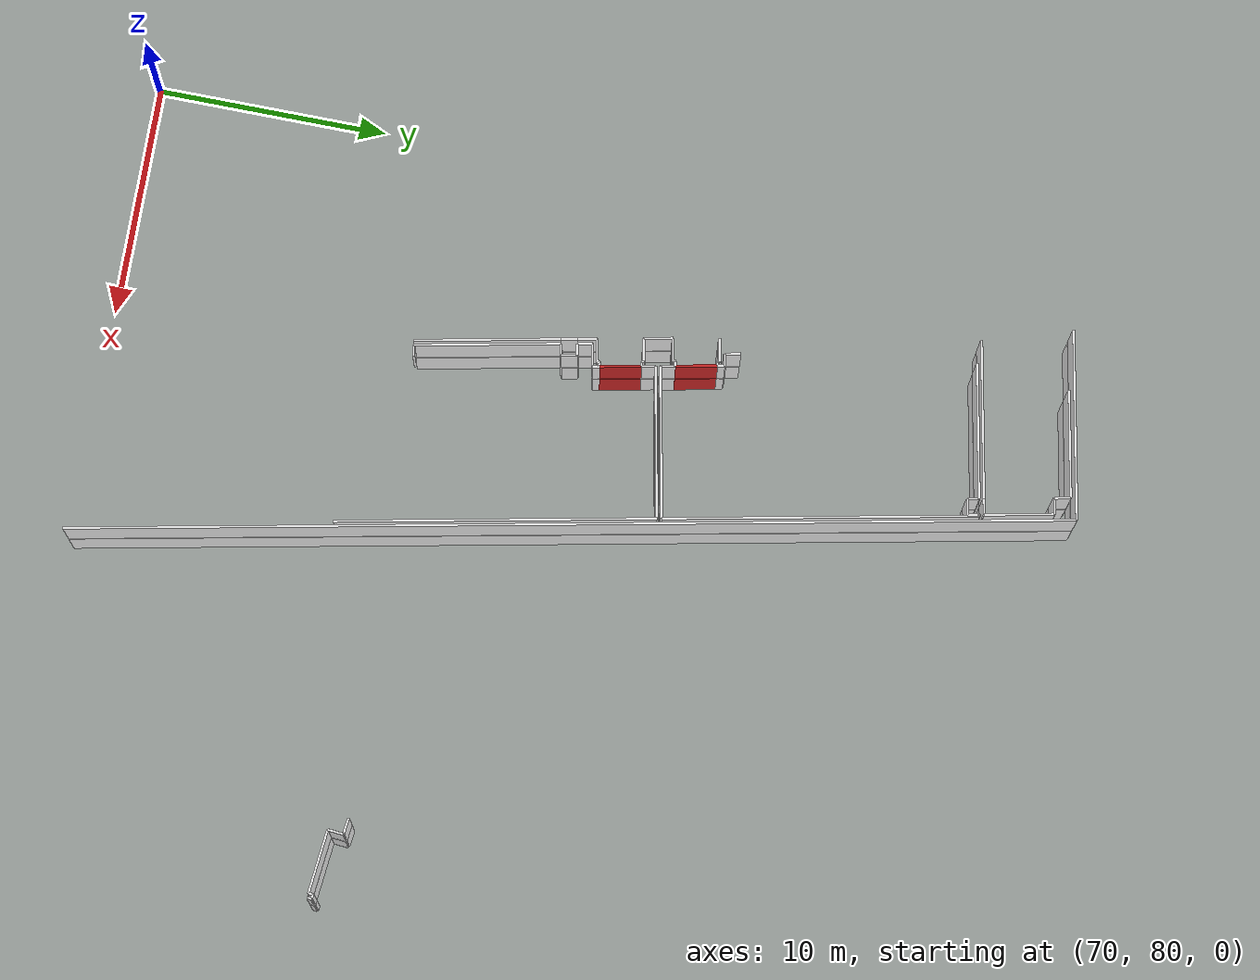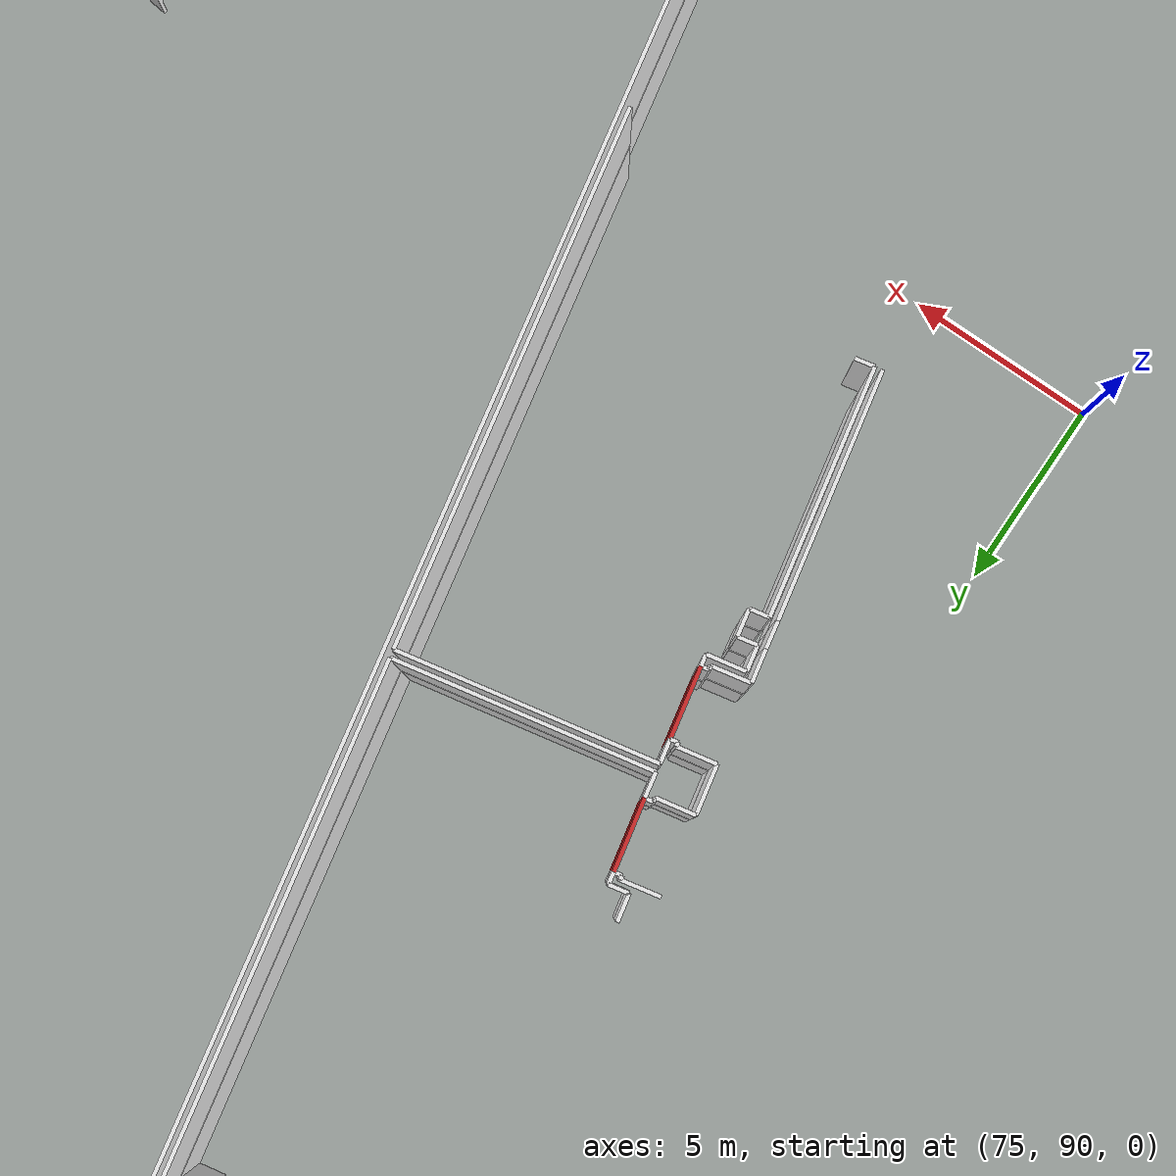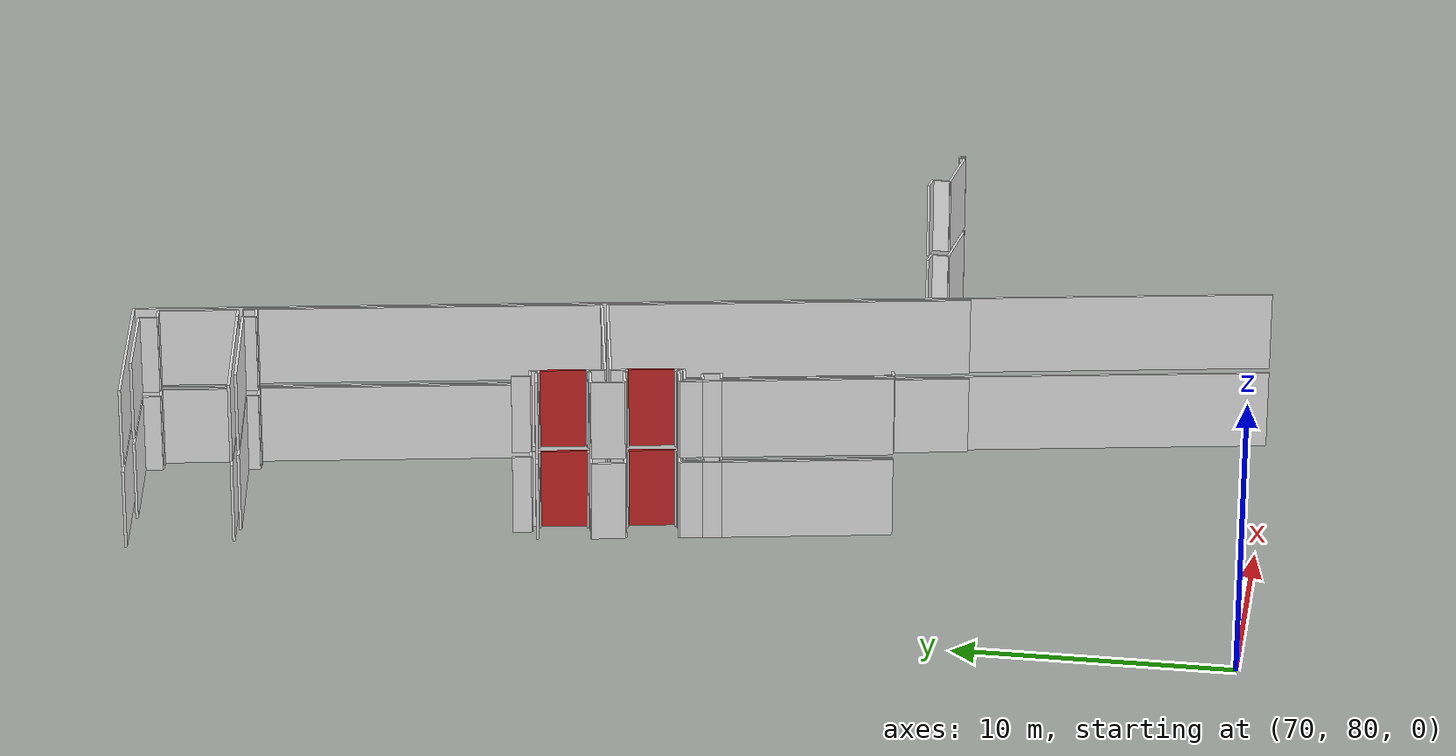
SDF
<sdf version="1.6">
 <world name="default">
  <model name="wall_78.6_105.4_0.0">
   <static>true</static>
   <pose>78.55999999999767 105.38999999989755 1.5 0 0 -1.3690339825092397</pose>
   <link name="link">
    <visual name="visual">
     <geometry><box><size>1.796440926065282 0.1 3</size></box></geometry>
     <material>
      <script><uri>file://media/materials/scripts/gazebo.material</uri><name>Gazebo/Red</name></script>
     </material>
    </visual>
   </link>
  </model>
  <model name="wall_79.2_102.2_0.0">
   <static>true</static>
   <pose>79.18499999999767 102.20999999996275 1.5 0 0 -1.3744936626731843</pose>
   <link name="link">
    <visual name="visual">
     <geometry><box><size>1.7944637079631676 0.1 3</size></box></geometry>
     <material>
      <script><uri>file://media/materials/scripts/gazebo.material</uri><name>Gazebo/Red</name></script>
     </material>
    </visual>
   </link>
  </model>
  <model name="wall_77.8_106.8_0.0">
   <static>true</static>
   <pose>77.76000000000931 106.81000000005588 1.5 0 0 -1.3677511094351602</pose>
   <link name="link">
    <visual name="visual">
     <geometry><box><size>0.6942621980193073 0.1 3</size></box></geometry>
     <material>
      <script><uri>file://media/materials/scripts/gazebo.material</uri><name>Gazebo/White</name></script>
     </material>
    </visual>
   </link>
  </model>
  <model name="wall_78.1_106.5_0.0">
   <static>true</static>
   <pose>78.0800000000163 106.52000000001863 1.5 0 0 0.19739555913347878</pose>
   <link name="link">
    <visual name="visual">
     <geometry><box><size>0.5099019512862195 0.1 3</size></box></geometry>
     <material>
      <script><uri>file://media/materials/scripts/gazebo.material</uri><name>Gazebo/White</name></script>
     </material>
    </visual>
   </link>
  </model>
  <model name="wall_78.4_106.4_0.0">
   <static>true</static>
   <pose>78.35500000001048 106.4199999999255 1.5 0 0 -1.4056476493173427</pose>
   <link name="link">
    <visual name="visual">
     <geometry><box><size>0.30413812632926696 0.1 3</size></box></geometry>
     <material>
      <script><uri>file://media/materials/scripts/gazebo.material</uri><name>Gazebo/White</name></script>
     </material>
    </visual>
   </link>
  </model>
  <model name="wall_78.8_104.2_0.0">
   <static>true</static>
   <pose>78.79999999998836 104.19499999983236 1.5 0 0 -1.382574821464652</pose>
   <link name="link">
    <visual name="visual">
     <geometry><box><size>0.6413267496823023 0.1 3</size></box></geometry>
     <material>
      <script><uri>file://media/materials/scripts/gazebo.material</uri><name>Gazebo/White</name></script>
     </material>
    </visual>
   </link>
  </model>
  <model name="wall_82.1_104.5_0.0">
   <static>true</static>
   <pose>82.07499999998254 104.51499999989755 1.5 0 0 0.1950017882431763</pose>
   <link name="link">
    <visual name="visual">
     <geometry><box><size>6.554220014613294 0.1 3</size></box></geometry>
     <material>
      <script><uri>file://media/materials/scripts/gazebo.material</uri><name>Gazebo/White</name></script>
     </material>
    </visual>
   </link>
  </model>
  <model name="wall_84.0_111.8_0.0">
   <static>true</static>
   <pose>83.97000000000116 111.76499999989755 1.5 0 0 1.7677557767697853</pose>
   <link name="link">
    <visual name="visual">
     <geometry><box><size>13.490830219051515 0.1 3</size></box></geometry>
     <material>
      <script><uri>file://media/materials/scripts/gazebo.material</uri><name>Gazebo/White</name></script>
     </material>
    </visual>
   </link>
  </model>
  <model name="wall_82.6_118.4_0.0">
   <static>true</static>
   <pose>82.625 118.375 1.5 0 0 -2.944197098217425</pose>
   <link name="link">
    <visual name="visual">
     <geometry><box><size>0.050990195137754324 0.1 3</size></box></geometry>
     <material>
      <script><uri>file://media/materials/scripts/gazebo.material</uri><name>Gazebo/White</name></script>
     </material>
    </visual>
   </link>
  </model>
  <model name="wall_82.6_118.1_0.0">
   <static>true</static>
   <pose>82.64999999999418 118.13000000012107 1.5 0 0 -1.3654009375276481</pose>
   <link name="link">
    <visual name="visual">
     <geometry><box><size>0.4903060268741386 0.1 3</size></box></geometry>
     <material>
      <script><uri>file://media/materials/scripts/gazebo.material</uri><name>Gazebo/White</name></script>
     </material>
    </visual>
   </link>
  </model>
  <model name="wall_82.4_117.8_0.0">
   <static>true</static>
   <pose>82.35500000001048 117.82499999995343 1.5 0 0 -2.9553698126839456</pose>
   <link name="link">
    <visual name="visual">
     <geometry><box><size>0.7021395873294909 0.1 3</size></box></geometry>
     <material>
      <script><uri>file://media/materials/scripts/gazebo.material</uri><name>Gazebo/White</name></script>
     </material>
    </visual>
   </link>
  </model>
  <model name="wall_82.0_118.0_0.0">
   <static>true</static>
   <pose>81.95999999999185 118.0 1.5 0 0 1.7761917158684424</pose>
   <link name="link">
    <visual name="visual">
     <geometry><box><size>0.4903060273300119 0.1 3</size></box></geometry>
     <material>
      <script><uri>file://media/materials/scripts/gazebo.material</uri><name>Gazebo/White</name></script>
     </material>
    </visual>
   </link>
  </model>
  <model name="wall_79.1_117.7_0.0">
   <static>true</static>
   <pose>79.06499999997322 117.68000000016764 1.5 0 0 -2.947240709618677</pose>
   <link name="link">
    <visual name="visual">
     <geometry><box><size>5.799180976679107 0.1 3</size></box></geometry>
     <material>
      <script><uri>file://media/materials/scripts/gazebo.material</uri><name>Gazebo/White</name></script>
     </material>
    </visual>
   </link>
  </model>
  <model name="wall_79.4_101.2_0.0">
   <static>true</static>
   <pose>79.38999999998487 101.18500000005588 1.5 0 0 -1.3667783472355337</pose>
   <link name="link">
    <visual name="visual">
     <geometry><box><size>0.2961418579352255 0.1 3</size></box></geometry>
     <material>
      <script><uri>file://media/materials/scripts/gazebo.material</uri><name>Gazebo/White</name></script>
     </material>
    </visual>
   </link>
  </model>
  <model name="wall_78.9_100.9_0.0">
   <static>true</static>
   <pose>78.92999999999302 100.94500000006519 1.5 0 0 -2.950090935171577</pose>
   <link name="link">
    <visual name="visual">
     <geometry><box><size>0.9982484660355146 0.1 3</size></box></geometry>
     <material>
      <script><uri>file://media/materials/scripts/gazebo.material</uri><name>Gazebo/White</name></script>
     </material>
    </visual>
   </link>
  </model>
  <model name="wall_78.5_100.5_0.0">
   <static>true</static>
   <pose>78.50500000000466 100.53000000002794 1.5 0 0 -1.3703977730017727</pose>
   <link name="link">
    <visual name="visual">
     <geometry><box><size>0.6530696748189306 0.1 3</size></box></geometry>
     <material>
      <script><uri>file://media/materials/scripts/gazebo.material</uri><name>Gazebo/White</name></script>
     </material>
    </visual>
   </link>
  </model>
  <model name="wall_78.8_100.3_0.0">
   <static>true</static>
   <pose>78.81500000000233 100.26000000000931 1.5 0 0 0.2013171085608308</pose>
   <link name="link">
    <visual name="visual">
     <geometry><box><size>0.5000999900114971 0.1 3</size></box></geometry>
     <material>
      <script><uri>file://media/materials/scripts/gazebo.material</uri><name>Gazebo/White</name></script>
     </material>
    </visual>
   </link>
  </model>
  <model name="wall_79.1_100.0_0.0">
   <static>true</static>
   <pose>79.125 99.96999999997206 1.5 0 0 -1.3818991459561358</pose>
   <link name="link">
    <visual name="visual">
     <geometry><box><size>0.6923149573923696 0.1 3</size></box></geometry>
     <material>
      <script><uri>file://media/materials/scripts/gazebo.material</uri><name>Gazebo/White</name></script>
     </material>
    </visual>
   </link>
  </model>
  <model name="wall_78.9_99.6_0.0">
   <static>true</static>
   <pose>78.94500000000698 99.57999999984168 1.5 0 0 -2.9402755450289626</pose>
   <link name="link">
    <visual name="visual">
     <geometry><box><size>0.5000999900114971 0.1 3</size></box></geometry>
     <material>
      <script><uri>file://media/materials/scripts/gazebo.material</uri><name>Gazebo/White</name></script>
     </material>
    </visual>
   </link>
  </model>
  <model name="wall_79.3_96.4_0.0">
   <static>true</static>
   <pose>79.31500000000233 96.44999999995343 1.5 0 0 -1.37371297423356</pose>
   <link name="link">
    <visual name="visual">
     <geometry><box><size>6.281600114306311 0.1 3</size></box></geometry>
     <material>
      <script><uri>file://media/materials/scripts/gazebo.material</uri><name>Gazebo/White</name></script>
     </material>
    </visual>
   </link>
  </model>
  <model name="wall_86.7_98.2_0.0">
   <static>true</static>
   <pose>86.67500000001746 98.21000000019558 1.5 0 0 1.7677638655556385</pose>
   <link name="link">
    <visual name="visual">
     <geometry><box><size>13.745781170945156 0.1 3</size></box></geometry>
     <material>
      <script><uri>file://media/materials/scripts/gazebo.material</uri><name>Gazebo/White</name></script>
     </material>
    </visual>
   </link>
  </model>
  <model name="wall_82.1_104.3_0.0">
   <static>true</static>
   <pose>82.11000000001513 104.31500000017695 1.5 0 0 -2.9468860624579416</pose>
   <link name="link">
    <visual name="visual">
     <geometry><box><size>6.564030773852092 0.1 3</size></box></geometry>
     <material>
      <script><uri>file://media/materials/scripts/gazebo.material</uri><name>Gazebo/White</name></script>
     </material>
    </visual>
   </link>
  </model>
  <model name="wall_79.0_103.4_0.0">
   <static>true</static>
   <pose>78.95000000001164 103.38500000000931 1.5 0 0 -1.370143449587411</pose>
   <link name="link">
    <visual name="visual">
     <geometry><box><size>0.6020797292489833 0.1 3</size></box></geometry>
     <material>
      <script><uri>file://media/materials/scripts/gazebo.material</uri><name>Gazebo/White</name></script>
     </material>
    </visual>
   </link>
  </model>
  <model name="wall_78.9_121.6_0.0">
   <static>true</static>
   <pose>78.89000000001397 121.61499999999069 1.5 0 0 0.19441557721220537</pose>
   <link name="link">
    <visual name="visual">
     <geometry><box><size>4.606788469248449 0.1 3</size></box></geometry>
     <material>
      <script><uri>file://media/materials/scripts/gazebo.material</uri><name>Gazebo/White</name></script>
     </material>
    </visual>
   </link>
  </model>
  <model name="wall_81.2_121.7_0.0">
   <static>true</static>
   <pose>81.22000000000116 121.71999999997206 1.5 0 0 -1.3677511096525332</pose>
   <link name="link">
    <visual name="visual">
     <geometry><box><size>0.6942621984636649 0.1 3</size></box></geometry>
     <material>
      <script><uri>file://media/materials/scripts/gazebo.material</uri><name>Gazebo/White</name></script>
     </material>
    </visual>
   </link>
  </model>
  <model name="wall_81.6_121.4_0.0">
   <static>true</static>
   <pose>81.62999999997555 121.44499999983236 1.5 0 0 0.18889718072096112</pose>
   <link name="link">
    <visual name="visual">
     <geometry><box><size>0.6923149571989928 0.1 3</size></box></geometry>
     <material>
      <script><uri>file://media/materials/scripts/gazebo.material</uri><name>Gazebo/White</name></script>
     </material>
    </visual>
   </link>
  </model>
  <model name="wall_82.3_120.0_0.0">
   <static>true</static>
   <pose>82.26499999998487 120.0449999999255 1.5 0 0 -1.3720884317123052</pose>
   <link name="link">
    <visual name="visual">
     <geometry><box><size>2.9888124729202743 0.1 3</size></box></geometry>
     <material>
      <script><uri>file://media/materials/scripts/gazebo.material</uri><name>Gazebo/White</name></script>
     </material>
    </visual>
   </link>
  </model>
  <model name="wall_82.2_118.5_0.0">
   <static>true</static>
   <pose>82.21499999999651 118.51000000000931 1.5 0 0 -2.9414115854430696</pose>
   <link name="link">
    <visual name="visual">
     <geometry><box><size>0.7040596565914858 0.1 3</size></box></geometry>
     <material>
      <script><uri>file://media/materials/scripts/gazebo.material</uri><name>Gazebo/White</name></script>
     </material>
    </visual>
   </link>
  </model>
  <model name="wall_78.5_117.8_0.0">
   <static>true</static>
   <pose>78.52999999999884 117.78000000002794 1.5 0 0 -2.9465012371516703</pose>
   <link name="link">
    <visual name="visual">
     <geometry><box><size>6.809170287154237 0.1 3</size></box></geometry>
     <material>
      <script><uri>file://media/materials/scripts/gazebo.material</uri><name>Gazebo/White</name></script>
     </material>
    </visual>
   </link>
  </model>
  <model name="wall_77.7_106.2_0.0">
   <static>true</static>
   <pose>77.67999999999302 106.22999999998137 1.5 0 0 0.2013171085608308</pose>
   <link name="link">
    <visual name="visual">
     <geometry><box><size>1.0001999800229942 0.1 3</size></box></geometry>
     <material>
      <script><uri>file://media/materials/scripts/gazebo.material</uri><name>Gazebo/White</name></script>
     </material>
    </visual>
   </link>
  </model>
  <model name="wall_78.2_106.3_0.0">
   <static>true</static>
   <pose>78.17499999998836 106.28000000002794 1.5 0 0 -1.4711276743037347</pose>
   <link name="link">
    <visual name="visual">
     <geometry><box><size>0.10049875630480566 0.1 3</size></box></geometry>
     <material>
      <script><uri>file://media/materials/scripts/gazebo.material</uri><name>Gazebo/White</name></script>
     </material>
    </visual>
   </link>
  </model>
  <model name="wall_78.3_106.2_0.0">
   <static>true</static>
   <pose>78.27999999999884 106.25 1.5 0 0 0.19739556001778746</pose>
   <link name="link">
    <visual name="visual">
     <geometry><box><size>0.20396078056243275 0.1 3</size></box></geometry>
     <material>
      <script><uri>file://media/materials/scripts/gazebo.material</uri><name>Gazebo/White</name></script>
     </material>
    </visual>
   </link>
  </model>
  <model name="wall_78.6_104.5_0.0">
   <static>true</static>
   <pose>78.63500000000931 104.48999999999069 1.5 0 0 -2.9533711502210322</pose>
   <link name="link">
    <visual name="visual">
     <geometry><box><size>0.21377558314756415 0.1 3</size></box></geometry>
     <material>
      <script><uri>file://media/materials/scripts/gazebo.material</uri><name>Gazebo/White</name></script>
     </material>
    </visual>
   </link>
  </model>
  <model name="wall_78.5_104.4_0.0">
   <static>true</static>
   <pose>78.54000000000815 104.42000000015832 1.5 0 0 -1.3734007675047049</pose>
   <link name="link">
    <visual name="visual">
     <geometry><box><size>0.10198039035541688 0.1 3</size></box></geometry>
     <material>
      <script><uri>file://media/materials/scripts/gazebo.material</uri><name>Gazebo/White</name></script>
     </material>
    </visual>
   </link>
  </model>
  <model name="wall_78.1_104.3_0.0">
   <static>true</static>
   <pose>78.05999999999767 104.2750000001397 1.5 0 0 -2.950090935171577</pose>
   <link name="link">
    <visual name="visual">
     <geometry><box><size>0.9982484660355146 0.1 3</size></box></geometry>
     <material>
      <script><uri>file://media/materials/scripts/gazebo.material</uri><name>Gazebo/White</name></script>
     </material>
    </visual>
   </link>
  </model>
  <model name="wall_77.7_103.6_0.0">
   <static>true</static>
   <pose>77.69500000000698 103.57000000006519 1.5 0 0 -1.3686763926784307</pose>
   <link name="link">
    <visual name="visual">
     <geometry><box><size>1.2453513562444674 0.1 3</size></box></geometry>
     <material>
      <script><uri>file://media/materials/scripts/gazebo.material</uri><name>Gazebo/White</name></script>
     </material>
    </visual>
   </link>
  </model>
  <model name="wall_78.3_103.1_0.0">
   <static>true</static>
   <pose>78.30999999999767 103.05499999993481 1.5 0 0 0.19150171841821614</pose>
   <link name="link">
    <visual name="visual">
     <geometry><box><size>0.9982484660355146 0.1 3</size></box></geometry>
     <material>
      <script><uri>file://media/materials/scripts/gazebo.material</uri><name>Gazebo/White</name></script>
     </material>
    </visual>
   </link>
  </model>
  <model name="wall_78.8_103.1_0.0">
   <static>true</static>
   <pose>78.80999999999767 103.0999999998603 1.5 0 0 -1.373400766945016</pose>
   <link name="link">
    <visual name="visual">
     <geometry><box><size>0.10198039036683233 0.1 3</size></box></geometry>
     <material>
      <script><uri>file://media/materials/scripts/gazebo.material</uri><name>Gazebo/White</name></script>
     </material>
    </visual>
   </link>
  </model>
  <model name="wall_78.9_103.1_0.0">
   <static>true</static>
   <pose>78.91500000000815 103.06999999983236 1.5 0 0 0.20749622662047904</pose>
   <link name="link">
    <visual name="visual">
     <geometry><box><size>0.19416487839942884 0.1 3</size></box></geometry>
     <material>
      <script><uri>file://media/materials/scripts/gazebo.material</uri><name>Gazebo/White</name></script>
     </material>
    </visual>
   </link>
  </model>
  <model name="wall_79.3_101.3_0.0">
   <static>true</static>
   <pose>79.26499999998487 101.31000000005588 1.5 0 0 -2.9340964269693144</pose>
   <link name="link">
    <visual name="visual">
     <geometry><box><size>0.19416487839942884 0.1 3</size></box></geometry>
     <material>
      <script><uri>file://media/materials/scripts/gazebo.material</uri><name>Gazebo/White</name></script>
     </material>
    </visual>
   </link>
  </model>
  <model name="wall_79.2_101.2_0.0">
   <static>true</static>
   <pose>79.17999999999302 101.24500000011176 1.5 0 0 -1.3521273803731177</pose>
   <link name="link">
    <visual name="visual">
     <geometry><box><size>0.0921954444315063 0.1 3</size></box></geometry>
     <material>
      <script><uri>file://media/materials/scripts/gazebo.material</uri><name>Gazebo/White</name></script>
     </material>
    </visual>
   </link>
  </model>
  <model name="wall_78.7_101.1_0.0">
   <static>true</static>
   <pose>78.69500000000698 101.10000000009313 1.5 0 0 -2.942255348424875</pose>
   <link name="link">
    <visual name="visual">
     <geometry><box><size>1.0100000000277551 0.1 3</size></box></geometry>
     <material>
      <script><uri>file://media/materials/scripts/gazebo.material</uri><name>Gazebo/White</name></script>
     </material>
    </visual>
   </link>
  </model>
  <model name="wall_78.3_100.6_0.0">
   <static>true</static>
   <pose>78.28500000000349 100.58499999996275 1.5 0 0 -1.3687711704277956</pose>
   <link name="link">
    <visual name="visual">
     <geometry><box><size>0.8472307832687256 0.1 3</size></box></geometry>
     <material>
      <script><uri>file://media/materials/scripts/gazebo.material</uri><name>Gazebo/White</name></script>
     </material>
    </visual>
   </link>
  </model>
  <model name="wall_78.4_99.8_0.0">
   <static>true</static>
   <pose>78.43499999999767 99.8300000000745 1.5 0 0 -1.3818991458298349</pose>
   <link name="link">
    <visual name="visual">
     <geometry><box><size>0.6923149569349915 0.1 3</size></box></geometry>
     <material>
      <script><uri>file://media/materials/scripts/gazebo.material</uri><name>Gazebo/White</name></script>
     </material>
    </visual>
   </link>
  </model>
  <model name="wall_79.1_96.4_0.0">
   <static>true</static>
   <pose>79.11999999999534 96.41000000014901 1.5 0 0 -1.3721523281490677</pose>
   <link name="link">
    <visual name="visual">
     <geometry><box><size>6.283565866752152 0.1 3</size></box></geometry>
     <material>
      <script><uri>file://media/materials/scripts/gazebo.material</uri><name>Gazebo/White</name></script>
     </material>
    </visual>
   </link>
  </model>
  <model name="wall_103.9_93.6_0.0">
   <static>true</static>
   <pose>103.94500000000698 93.5800000000745 1.5 0 0 1.4219063791853994</pose>
   <link name="link">
    <visual name="visual">
     <geometry><box><size>0.20223748434991518 0.1 3</size></box></geometry>
     <material>
      <script><uri>file://media/materials/scripts/gazebo.material</uri><name>Gazebo/White</name></script>
     </material>
    </visual>
   </link>
  </model>
  <model name="wall_103.9_93.7_0.0">
   <static>true</static>
   <pose>103.86000000001513 93.69000000017695 1.5 0 0 3.0419240010121844</pose>
   <link name="link">
    <visual name="visual">
     <geometry><box><size>0.20099751243585498 0.1 3</size></box></geometry>
     <material>
      <script><uri>file://media/materials/scripts/gazebo.material</uri><name>Gazebo/White</name></script>
     </material>
    </visual>
   </link>
  </model>
  <model name="wall_103.8_93.6_0.0">
   <static>true</static>
   <pose>103.75 93.60000000009313 1.5 0 0 -1.6704649792860586</pose>
   <link name="link">
    <visual name="visual">
     <geometry><box><size>0.20099751260961132 0.1 3</size></box></geometry>
     <material>
      <script><uri>file://media/materials/scripts/gazebo.material</uri><name>Gazebo/White</name></script>
     </material>
    </visual>
   </link>
  </model>
  <model name="wall_102.3_93.6_0.0">
   <static>true</static>
   <pose>102.34500000000116 93.63999999989755 1.5 0 0 3.041569139581511</pose>
   <link name="link">
    <visual name="visual">
     <geometry><box><size>2.804014978520681 0.1 3</size></box></geometry>
     <material>
      <script><uri>file://media/materials/scripts/gazebo.material</uri><name>Gazebo/White</name></script>
     </material>
    </visual>
   </link>
  </model>
  <model name="wall_101.0_94.1_0.0">
   <static>true</static>
   <pose>100.98500000001513 94.125 1.5 0 0 1.4696929551082138</pose>
   <link name="link">
    <visual name="visual">
     <geometry><box><size>0.6935416357843824 0.1 3</size></box></geometry>
     <material>
      <script><uri>file://media/materials/scripts/gazebo.material</uri><name>Gazebo/White</name></script>
     </material>
    </visual>
   </link>
  </model>
  <model name="wall_100.7_94.5_0.0">
   <static>true</static>
   <pose>100.6700000000128 94.51000000000931 1.5 0 0 3.0278006469995504</pose>
   <link name="link">
    <visual name="visual">
     <geometry><box><size>0.7045565981194933 0.1 3</size></box></geometry>
     <material>
      <script><uri>file://media/materials/scripts/gazebo.material</uri><name>Gazebo/White</name></script>
     </material>
    </visual>
   </link>
  </model>
  <model name="wall_86.2_101.4_0.0">
   <static>true</static>
   <pose>86.25 101.36499999999069 1.5 0 0 1.767599820403571</pose>
   <link name="link">
    <visual name="visual">
     <geometry><box><size>43.061227339674524 0.1 3</size></box></geometry>
     <material>
      <script><uri>file://media/materials/scripts/gazebo.material</uri><name>Gazebo/White</name></script>
     </material>
    </visual>
   </link>
  </model>
  <model name="wall_78.0_121.7_0.0">
   <static>true</static>
   <pose>78.03500000000349 121.68999999994412 1.5 0 0 -2.9468394128265745</pose>
   <link name="link">
    <visual name="visual">
     <geometry><box><size>8.164343206863132 0.1 3</size></box></geometry>
     <material>
      <script><uri>file://media/materials/scripts/gazebo.material</uri><name>Gazebo/White</name></script>
     </material>
    </visual>
   </link>
  </model>
  <model name="wall_78.6_105.4_3.2">
   <static>true</static>
   <pose>78.55999999999767 105.38999999989755 4.7 0 0 -1.3690339825092397</pose>
   <link name="link">
    <visual name="visual">
     <geometry><box><size>1.796440926065282 0.1 3</size></box></geometry>
     <material>
      <script><uri>file://media/materials/scripts/gazebo.material</uri><name>Gazebo/Red</name></script>
     </material>
    </visual>
   </link>
  </model>
  <model name="wall_79.2_102.2_3.2">
   <static>true</static>
   <pose>79.18499999999767 102.20999999996275 4.7 0 0 -1.3744936626731843</pose>
   <link name="link">
    <visual name="visual">
     <geometry><box><size>1.7944637079631676 0.1 3</size></box></geometry>
     <material>
      <script><uri>file://media/materials/scripts/gazebo.material</uri><name>Gazebo/Red</name></script>
     </material>
    </visual>
   </link>
  </model>
  <model name="wall_77.8_106.8_3.2">
   <static>true</static>
   <pose>77.76000000000931 106.81000000005588 4.7 0 0 -1.3677511094351602</pose>
   <link name="link">
    <visual name="visual">
     <geometry><box><size>0.6942621980193073 0.1 3</size></box></geometry>
     <material>
      <script><uri>file://media/materials/scripts/gazebo.material</uri><name>Gazebo/White</name></script>
     </material>
    </visual>
   </link>
  </model>
  <model name="wall_78.1_106.5_3.2">
   <static>true</static>
   <pose>78.0800000000163 106.52000000001863 4.7 0 0 0.19739555913347878</pose>
   <link name="link">
    <visual name="visual">
     <geometry><box><size>0.5099019512862195 0.1 3</size></box></geometry>
     <material>
      <script><uri>file://media/materials/scripts/gazebo.material</uri><name>Gazebo/White</name></script>
     </material>
    </visual>
   </link>
  </model>
  <model name="wall_78.4_106.4_3.2">
   <static>true</static>
   <pose>78.35500000001048 106.4199999999255 4.7 0 0 -1.4056476493173427</pose>
   <link name="link">
    <visual name="visual">
     <geometry><box><size>0.30413812632926696 0.1 3</size></box></geometry>
     <material>
      <script><uri>file://media/materials/scripts/gazebo.material</uri><name>Gazebo/White</name></script>
     </material>
    </visual>
   </link>
  </model>
  <model name="wall_78.8_104.2_3.2">
   <static>true</static>
   <pose>78.79999999998836 104.19499999983236 4.7 0 0 -1.382574821464652</pose>
   <link name="link">
    <visual name="visual">
     <geometry><box><size>0.6413267496823023 0.1 3</size></box></geometry>
     <material>
      <script><uri>file://media/materials/scripts/gazebo.material</uri><name>Gazebo/White</name></script>
     </material>
    </visual>
   </link>
  </model>
  <model name="wall_82.1_104.5_3.2">
   <static>true</static>
   <pose>82.07499999998254 104.51499999989755 4.7 0 0 0.1950017882431763</pose>
   <link name="link">
    <visual name="visual">
     <geometry><box><size>6.554220014613294 0.1 3</size></box></geometry>
     <material>
      <script><uri>file://media/materials/scripts/gazebo.material</uri><name>Gazebo/White</name></script>
     </material>
    </visual>
   </link>
  </model>
  <model name="wall_84.0_111.8_3.2">
   <static>true</static>
   <pose>83.97000000000116 111.76499999989755 4.7 0 0 1.7677557767697853</pose>
   <link name="link">
    <visual name="visual">
     <geometry><box><size>13.490830219051515 0.1 3</size></box></geometry>
     <material>
      <script><uri>file://media/materials/scripts/gazebo.material</uri><name>Gazebo/White</name></script>
     </material>
    </visual>
   </link>
  </model>
  <model name="wall_82.6_118.4_3.2">
   <static>true</static>
   <pose>82.625 118.375 4.7 0 0 -2.944197098217425</pose>
   <link name="link">
    <visual name="visual">
     <geometry><box><size>0.050990195137754324 0.1 3</size></box></geometry>
     <material>
      <script><uri>file://media/materials/scripts/gazebo.material</uri><name>Gazebo/White</name></script>
     </material>
    </visual>
   </link>
  </model>
  <model name="wall_82.6_118.1_3.2">
   <static>true</static>
   <pose>82.64999999999418 118.13000000012107 4.7 0 0 -1.3654009375276481</pose>
   <link name="link">
    <visual name="visual">
     <geometry><box><size>0.4903060268741386 0.1 3</size></box></geometry>
     <material>
      <script><uri>file://media/materials/scripts/gazebo.material</uri><name>Gazebo/White</name></script>
     </material>
    </visual>
   </link>
  </model>
  <model name="wall_82.4_117.8_3.2">
   <static>true</static>
   <pose>82.35500000001048 117.82499999995343 4.7 0 0 -2.9553698126839456</pose>
   <link name="link">
    <visual name="visual">
     <geometry><box><size>0.7021395873294909 0.1 3</size></box></geometry>
     <material>
      <script><uri>file://media/materials/scripts/gazebo.material</uri><name>Gazebo/White</name></script>
     </material>
    </visual>
   </link>
  </model>
  <model name="wall_82.0_118.0_3.2">
   <static>true</static>
   <pose>81.95999999999185 118.0 4.7 0 0 1.7761917158684424</pose>
   <link name="link">
    <visual name="visual">
     <geometry><box><size>0.4903060273300119 0.1 3</size></box></geometry>
     <material>
      <script><uri>file://media/materials/scripts/gazebo.material</uri><name>Gazebo/White</name></script>
     </material>
    </visual>
   </link>
  </model>
  <model name="wall_79.1_117.7_3.2">
   <static>true</static>
   <pose>79.06499999997322 117.68000000016764 4.7 0 0 -2.947240709618677</pose>
   <link name="link">
    <visual name="visual">
     <geometry><box><size>5.799180976679107 0.1 3</size></box></geometry>
     <material>
      <script><uri>file://media/materials/scripts/gazebo.material</uri><name>Gazebo/White</name></script>
     </material>
    </visual>
   </link>
  </model>
  <model name="wall_79.4_101.2_3.2">
   <static>true</static>
   <pose>79.38999999998487 101.18500000005588 4.7 0 0 -1.3667783472355337</pose>
   <link name="link">
    <visual name="visual">
     <geometry><box><size>0.2961418579352255 0.1 3</size></box></geometry>
     <material>
      <script><uri>file://media/materials/scripts/gazebo.material</uri><name>Gazebo/White</name></script>
     </material>
    </visual>
   </link>
  </model>
  <model name="wall_78.9_100.9_3.2">
   <static>true</static>
   <pose>78.92999999999302 100.94500000006519 4.7 0 0 -2.950090935171577</pose>
   <link name="link">
    <visual name="visual">
     <geometry><box><size>0.9982484660355146 0.1 3</size></box></geometry>
     <material>
      <script><uri>file://media/materials/scripts/gazebo.material</uri><name>Gazebo/White</name></script>
     </material>
    </visual>
   </link>
  </model>
  <model name="wall_78.5_100.5_3.2">
   <static>true</static>
   <pose>78.50500000000466 100.53000000002794 4.7 0 0 -1.3703977730017727</pose>
   <link name="link">
    <visual name="visual">
     <geometry><box><size>0.6530696748189306 0.1 3</size></box></geometry>
     <material>
      <script><uri>file://media/materials/scripts/gazebo.material</uri><name>Gazebo/White</name></script>
     </material>
    </visual>
   </link>
  </model>
  <model name="wall_78.8_100.3_3.2">
   <static>true</static>
   <pose>78.81500000000233 100.26000000000931 4.7 0 0 0.2013171085608308</pose>
   <link name="link">
    <visual name="visual">
     <geometry><box><size>0.5000999900114971 0.1 3</size></box></geometry>
     <material>
      <script><uri>file://media/materials/scripts/gazebo.material</uri><name>Gazebo/White</name></script>
     </material>
    </visual>
   </link>
  </model>
  <model name="wall_79.1_100.0_3.2">
   <static>true</static>
   <pose>79.125 99.96999999997206 4.7 0 0 -1.3818991459561358</pose>
   <link name="link">
    <visual name="visual">
     <geometry><box><size>0.6923149573923696 0.1 3</size></box></geometry>
     <material>
      <script><uri>file://media/materials/scripts/gazebo.material</uri><name>Gazebo/White</name></script>
     </material>
    </visual>
   </link>
  </model>
  <model name="wall_78.9_99.6_3.2">
   <static>true</static>
   <pose>78.94500000000698 99.57999999984168 4.7 0 0 -2.9402755450289626</pose>
   <link name="link">
    <visual name="visual">
     <geometry><box><size>0.5000999900114971 0.1 3</size></box></geometry>
     <material>
      <script><uri>file://media/materials/scripts/gazebo.material</uri><name>Gazebo/White</name></script>
     </material>
    </visual>
   </link>
  </model>
  <model name="wall_79.3_96.4_3.2">
   <static>true</static>
   <pose>79.31500000000233 96.44999999995343 4.7 0 0 -1.37371297423356</pose>
   <link name="link">
    <visual name="visual">
     <geometry><box><size>6.281600114306311 0.1 3</size></box></geometry>
     <material>
      <script><uri>file://media/materials/scripts/gazebo.material</uri><name>Gazebo/White</name></script>
     </material>
    </visual>
   </link>
  </model>
  <model name="wall_80.2_93.4_3.2">
   <static>true</static>
   <pose>80.17499999998836 93.42000000015832 4.7 0 0 0.2013171085608308</pose>
   <link name="link">
    <visual name="visual">
     <geometry><box><size>0.5000999900114971 0.1 3</size></box></geometry>
     <material>
      <script><uri>file://media/materials/scripts/gazebo.material</uri><name>Gazebo/White</name></script>
     </material>
    </visual>
   </link>
  </model>
  <model name="wall_86.7_98.2_3.2">
   <static>true</static>
   <pose>86.67500000001746 98.21000000019558 4.7 0 0 1.7677638655556385</pose>
   <link name="link">
    <visual name="visual">
     <geometry><box><size>13.745781170945156 0.1 3</size></box></geometry>
     <material>
      <script><uri>file://media/materials/scripts/gazebo.material</uri><name>Gazebo/White</name></script>
     </material>
    </visual>
   </link>
  </model>
  <model name="wall_82.1_104.3_3.2">
   <static>true</static>
   <pose>82.11000000001513 104.31500000017695 4.7 0 0 -2.9468860624579416</pose>
   <link name="link">
    <visual name="visual">
     <geometry><box><size>6.564030773852092 0.1 3</size></box></geometry>
     <material>
      <script><uri>file://media/materials/scripts/gazebo.material</uri><name>Gazebo/White</name></script>
     </material>
    </visual>
   </link>
  </model>
  <model name="wall_79.0_103.4_3.2">
   <static>true</static>
   <pose>78.95000000001164 103.38500000000931 4.7 0 0 -1.370143449587411</pose>
   <link name="link">
    <visual name="visual">
     <geometry><box><size>0.6020797292489833 0.1 3</size></box></geometry>
     <material>
      <script><uri>file://media/materials/scripts/gazebo.material</uri><name>Gazebo/White</name></script>
     </material>
    </visual>
   </link>
  </model>
  <model name="wall_78.9_121.6_3.2">
   <static>true</static>
   <pose>78.89000000001397 121.61499999999069 4.7 0 0 0.19441557721220537</pose>
   <link name="link">
    <visual name="visual">
     <geometry><box><size>4.606788469248449 0.1 3</size></box></geometry>
     <material>
      <script><uri>file://media/materials/scripts/gazebo.material</uri><name>Gazebo/White</name></script>
     </material>
    </visual>
   </link>
  </model>
  <model name="wall_81.2_121.7_3.2">
   <static>true</static>
   <pose>81.22000000000116 121.71999999997206 4.7 0 0 -1.3677511096525332</pose>
   <link name="link">
    <visual name="visual">
     <geometry><box><size>0.6942621984636649 0.1 3</size></box></geometry>
     <material>
      <script><uri>file://media/materials/scripts/gazebo.material</uri><name>Gazebo/White</name></script>
     </material>
    </visual>
   </link>
  </model>
  <model name="wall_81.6_121.4_3.2">
   <static>true</static>
   <pose>81.62999999997555 121.44499999983236 4.7 0 0 0.18889718072096112</pose>
   <link name="link">
    <visual name="visual">
     <geometry><box><size>0.6923149571989928 0.1 3</size></box></geometry>
     <material>
      <script><uri>file://media/materials/scripts/gazebo.material</uri><name>Gazebo/White</name></script>
     </material>
    </visual>
   </link>
  </model>
  <model name="wall_82.3_120.0_3.2">
   <static>true</static>
   <pose>82.26499999998487 120.0449999999255 4.7 0 0 -1.3720884317123052</pose>
   <link name="link">
    <visual name="visual">
     <geometry><box><size>2.9888124729202743 0.1 3</size></box></geometry>
     <material>
      <script><uri>file://media/materials/scripts/gazebo.material</uri><name>Gazebo/White</name></script>
     </material>
    </visual>
   </link>
  </model>
  <model name="wall_82.2_118.5_3.2">
   <static>true</static>
   <pose>82.21499999999651 118.51000000000931 4.7 0 0 -2.9414115854430696</pose>
   <link name="link">
    <visual name="visual">
     <geometry><box><size>0.7040596565914858 0.1 3</size></box></geometry>
     <material>
      <script><uri>file://media/materials/scripts/gazebo.material</uri><name>Gazebo/White</name></script>
     </material>
    </visual>
   </link>
  </model>
  <model name="wall_78.5_117.8_3.2">
   <static>true</static>
   <pose>78.52999999999884 117.78000000002794 4.7 0 0 -2.9465012371516703</pose>
   <link name="link">
    <visual name="visual">
     <geometry><box><size>6.809170287154237 0.1 3</size></box></geometry>
     <material>
      <script><uri>file://media/materials/scripts/gazebo.material</uri><name>Gazebo/White</name></script>
     </material>
    </visual>
   </link>
  </model>
  <model name="wall_77.7_106.2_3.2">
   <static>true</static>
   <pose>77.67999999999302 106.22999999998137 4.7 0 0 0.2013171085608308</pose>
   <link name="link">
    <visual name="visual">
     <geometry><box><size>1.0001999800229942 0.1 3</size></box></geometry>
     <material>
      <script><uri>file://media/materials/scripts/gazebo.material</uri><name>Gazebo/White</name></script>
     </material>
    </visual>
   </link>
  </model>
  <model name="wall_78.2_106.3_3.2">
   <static>true</static>
   <pose>78.17499999998836 106.28000000002794 4.7 0 0 -1.4711276743037347</pose>
   <link name="link">
    <visual name="visual">
     <geometry><box><size>0.10049875630480566 0.1 3</size></box></geometry>
     <material>
      <script><uri>file://media/materials/scripts/gazebo.material</uri><name>Gazebo/White</name></script>
     </material>
    </visual>
   </link>
  </model>
  <model name="wall_78.3_106.2_3.2">
   <static>true</static>
   <pose>78.27999999999884 106.25 4.7 0 0 0.19739556001778746</pose>
   <link name="link">
    <visual name="visual">
     <geometry><box><size>0.20396078056243275 0.1 3</size></box></geometry>
     <material>
      <script><uri>file://media/materials/scripts/gazebo.material</uri><name>Gazebo/White</name></script>
     </material>
    </visual>
   </link>
  </model>
  <model name="wall_78.6_104.5_3.2">
   <static>true</static>
   <pose>78.63500000000931 104.48999999999069 4.7 0 0 -2.9533711502210322</pose>
   <link name="link">
    <visual name="visual">
     <geometry><box><size>0.21377558314756415 0.1 3</size></box></geometry>
     <material>
      <script><uri>file://media/materials/scripts/gazebo.material</uri><name>Gazebo/White</name></script>
     </material>
    </visual>
   </link>
  </model>
  <model name="wall_78.5_104.4_3.2">
   <static>true</static>
   <pose>78.54000000000815 104.42000000015832 4.7 0 0 -1.3734007675047049</pose>
   <link name="link">
    <visual name="visual">
     <geometry><box><size>0.10198039035541688 0.1 3</size></box></geometry>
     <material>
      <script><uri>file://media/materials/scripts/gazebo.material</uri><name>Gazebo/White</name></script>
     </material>
    </visual>
   </link>
  </model>
  <model name="wall_78.1_104.3_3.2">
   <static>true</static>
   <pose>78.05999999999767 104.2750000001397 4.7 0 0 -2.950090935171577</pose>
   <link name="link">
    <visual name="visual">
     <geometry><box><size>0.9982484660355146 0.1 3</size></box></geometry>
     <material>
      <script><uri>file://media/materials/scripts/gazebo.material</uri><name>Gazebo/White</name></script>
     </material>
    </visual>
   </link>
  </model>
  <model name="wall_77.7_103.6_3.2">
   <static>true</static>
   <pose>77.69500000000698 103.57000000006519 4.7 0 0 -1.3686763926784307</pose>
   <link name="link">
    <visual name="visual">
     <geometry><box><size>1.2453513562444674 0.1 3</size></box></geometry>
     <material>
      <script><uri>file://media/materials/scripts/gazebo.material</uri><name>Gazebo/White</name></script>
     </material>
    </visual>
   </link>
  </model>
  <model name="wall_78.3_103.1_3.2">
   <static>true</static>
   <pose>78.30999999999767 103.05499999993481 4.7 0 0 0.19150171841821614</pose>
   <link name="link">
    <visual name="visual">
     <geometry><box><size>0.9982484660355146 0.1 3</size></box></geometry>
     <material>
      <script><uri>file://media/materials/scripts/gazebo.material</uri><name>Gazebo/White</name></script>
     </material>
    </visual>
   </link>
  </model>
  <model name="wall_78.8_103.1_3.2">
   <static>true</static>
   <pose>78.80999999999767 103.0999999998603 4.7 0 0 -1.373400766945016</pose>
   <link name="link">
    <visual name="visual">
     <geometry><box><size>0.10198039036683233 0.1 3</size></box></geometry>
     <material>
      <script><uri>file://media/materials/scripts/gazebo.material</uri><name>Gazebo/White</name></script>
     </material>
    </visual>
   </link>
  </model>
  <model name="wall_78.9_103.1_3.2">
   <static>true</static>
   <pose>78.91500000000815 103.06999999983236 4.7 0 0 0.20749622662047904</pose>
   <link name="link">
    <visual name="visual">
     <geometry><box><size>0.19416487839942884 0.1 3</size></box></geometry>
     <material>
      <script><uri>file://media/materials/scripts/gazebo.material</uri><name>Gazebo/White</name></script>
     </material>
    </visual>
   </link>
  </model>
  <model name="wall_79.3_101.3_3.2">
   <static>true</static>
   <pose>79.26499999998487 101.31000000005588 4.7 0 0 -2.9340964269693144</pose>
   <link name="link">
    <visual name="visual">
     <geometry><box><size>0.19416487839942884 0.1 3</size></box></geometry>
     <material>
      <script><uri>file://media/materials/scripts/gazebo.material</uri><name>Gazebo/White</name></script>
     </material>
    </visual>
   </link>
  </model>
  <model name="wall_79.2_101.2_3.2">
   <static>true</static>
   <pose>79.17999999999302 101.24500000011176 4.7 0 0 -1.3521273803731177</pose>
   <link name="link">
    <visual name="visual">
     <geometry><box><size>0.0921954444315063 0.1 3</size></box></geometry>
     <material>
      <script><uri>file://media/materials/scripts/gazebo.material</uri><name>Gazebo/White</name></script>
     </material>
    </visual>
   </link>
  </model>
  <model name="wall_78.7_101.1_3.2">
   <static>true</static>
   <pose>78.69500000000698 101.10000000009313 4.7 0 0 -2.942255348424875</pose>
   <link name="link">
    <visual name="visual">
     <geometry><box><size>1.0100000000277551 0.1 3</size></box></geometry>
     <material>
      <script><uri>file://media/materials/scripts/gazebo.material</uri><name>Gazebo/White</name></script>
     </material>
    </visual>
   </link>
  </model>
  <model name="wall_78.3_100.6_3.2">
   <static>true</static>
   <pose>78.28500000000349 100.58499999996275 4.7 0 0 -1.3687711704277956</pose>
   <link name="link">
    <visual name="visual">
     <geometry><box><size>0.8472307832687256 0.1 3</size></box></geometry>
     <material>
      <script><uri>file://media/materials/scripts/gazebo.material</uri><name>Gazebo/White</name></script>
     </material>
    </visual>
   </link>
  </model>
  <model name="wall_78.4_99.8_3.2">
   <static>true</static>
   <pose>78.43499999999767 99.8300000000745 4.7 0 0 -1.3818991458298349</pose>
   <link name="link">
    <visual name="visual">
     <geometry><box><size>0.6923149569349915 0.1 3</size></box></geometry>
     <material>
      <script><uri>file://media/materials/scripts/gazebo.material</uri><name>Gazebo/White</name></script>
     </material>
    </visual>
   </link>
  </model>
  <model name="wall_79.1_96.4_3.2">
   <static>true</static>
   <pose>79.11999999999534 96.41000000014901 4.7 0 0 -1.3721523281490677</pose>
   <link name="link">
    <visual name="visual">
     <geometry><box><size>6.283565866752152 0.1 3</size></box></geometry>
     <material>
      <script><uri>file://media/materials/scripts/gazebo.material</uri><name>Gazebo/White</name></script>
     </material>
    </visual>
   </link>
  </model>
  <model name="wall_103.9_93.6_3.2">
   <static>true</static>
   <pose>103.94500000000698 93.5800000000745 4.7 0 0 1.4219063791853994</pose>
   <link name="link">
    <visual name="visual">
     <geometry><box><size>0.20223748434991518 0.1 3</size></box></geometry>
     <material>
      <script><uri>file://media/materials/scripts/gazebo.material</uri><name>Gazebo/White</name></script>
     </material>
    </visual>
   </link>
  </model>
  <model name="wall_103.9_93.7_3.2">
   <static>true</static>
   <pose>103.86000000001513 93.69000000017695 4.7 0 0 3.0419240010121844</pose>
   <link name="link">
    <visual name="visual">
     <geometry><box><size>0.20099751243585498 0.1 3</size></box></geometry>
     <material>
      <script><uri>file://media/materials/scripts/gazebo.material</uri><name>Gazebo/White</name></script>
     </material>
    </visual>
   </link>
  </model>
  <model name="wall_103.8_93.6_3.2">
   <static>true</static>
   <pose>103.75 93.60000000009313 4.7 0 0 -1.6704649792860586</pose>
   <link name="link">
    <visual name="visual">
     <geometry><box><size>0.20099751260961132 0.1 3</size></box></geometry>
     <material>
      <script><uri>file://media/materials/scripts/gazebo.material</uri><name>Gazebo/White</name></script>
     </material>
    </visual>
   </link>
  </model>
  <model name="wall_102.3_93.6_3.2">
   <static>true</static>
   <pose>102.34500000000116 93.63999999989755 4.7 0 0 3.041569139581511</pose>
   <link name="link">
    <visual name="visual">
     <geometry><box><size>2.804014978520681 0.1 3</size></box></geometry>
     <material>
      <script><uri>file://media/materials/scripts/gazebo.material</uri><name>Gazebo/White</name></script>
     </material>
    </visual>
   </link>
  </model>
  <model name="wall_101.0_94.1_3.2">
   <static>true</static>
   <pose>100.98500000001513 94.125 4.7 0 0 1.4696929551082138</pose>
   <link name="link">
    <visual name="visual">
     <geometry><box><size>0.6935416357843824 0.1 3</size></box></geometry>
     <material>
      <script><uri>file://media/materials/scripts/gazebo.material</uri><name>Gazebo/White</name></script>
     </material>
    </visual>
   </link>
  </model>
  <model name="wall_100.7_94.5_3.2">
   <static>true</static>
   <pose>100.6700000000128 94.51000000000931 4.7 0 0 3.0278006469995504</pose>
   <link name="link">
    <visual name="visual">
     <geometry><box><size>0.7045565981194933 0.1 3</size></box></geometry>
     <material>
      <script><uri>file://media/materials/scripts/gazebo.material</uri><name>Gazebo/White</name></script>
     </material>
    </visual>
   </link>
  </model>
  <model name="wall_86.2_101.4_3.2">
   <static>true</static>
   <pose>86.25 101.36499999999069 4.7 0 0 1.767599820403571</pose>
   <link name="link">
    <visual name="visual">
     <geometry><box><size>43.061227339674524 0.1 3</size></box></geometry>
     <material>
      <script><uri>file://media/materials/scripts/gazebo.material</uri><name>Gazebo/White</name></script>
     </material>
    </visual>
   </link>
  </model>
  <model name="wall_78.0_121.7_3.2">
   <static>true</static>
   <pose>78.03500000000349 121.68999999994412 4.7 0 0 -2.9468394128265745</pose>
   <link name="link">
    <visual name="visual">
     <geometry><box><size>8.164343206863132 0.1 3</size></box></geometry>
     <material>
      <script><uri>file://media/materials/scripts/gazebo.material</uri><name>Gazebo/White</name></script>
     </material>
    </visual>
   </link>
  </model>
 </world>
</sdf>
